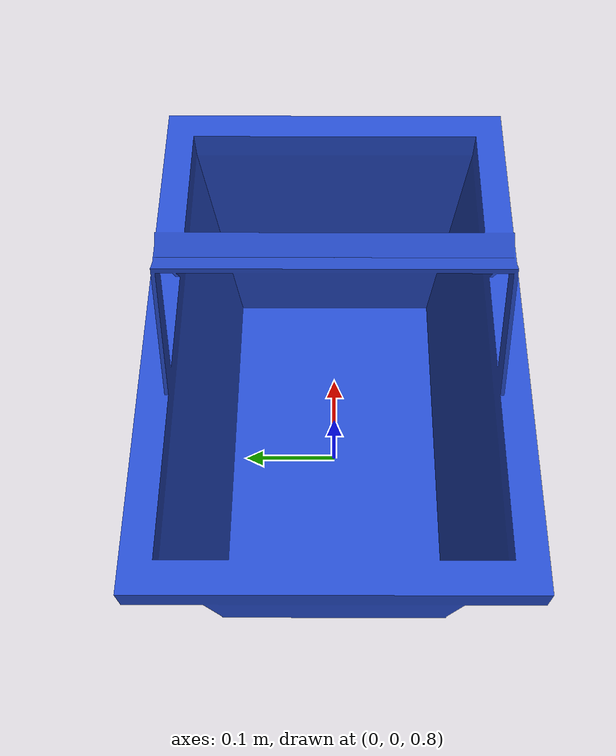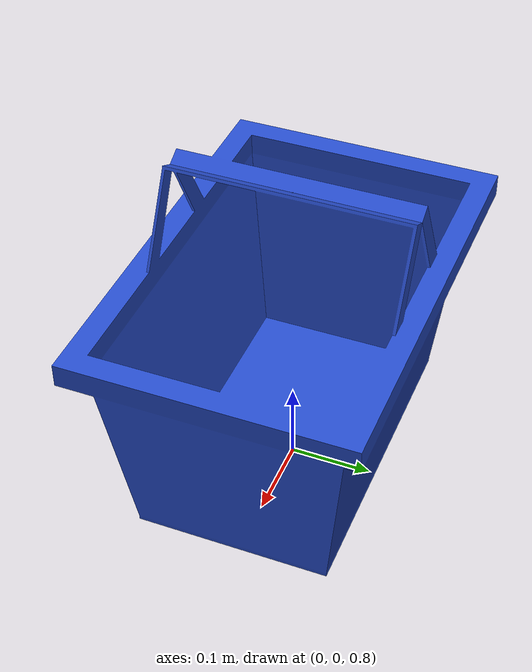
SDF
<?xml version="1.0" ?>
<sdf version="1.6">
  <model name="basket">
    <pose>0 0 0.96 0 0 0</pose>
    <link name="link">
      <inertial>
        <mass>100</mass>
      </inertial>
      <collision name="collision">
        <pose>0 0 0 0 0 1.57079632679</pose>
        <geometry>
          <mesh>
            <uri>model://basket/meshes/basket.dae</uri>
          </mesh>
        </geometry>
      </collision>
      <visual name="visual">
        <pose>0 0 0 0 0 1.57079632679</pose>
        <geometry>
          <mesh>
            <uri>model://basket/meshes/basket.dae</uri>
          </mesh>
        </geometry>
        <material>
            <script>
              <name>Gazebo/Blue</name>
              <uri>file://media/materials/scripts/gazebo.material</uri>
            </script>
          </material>
      </visual>
    </link>
  </model>
</sdf>
